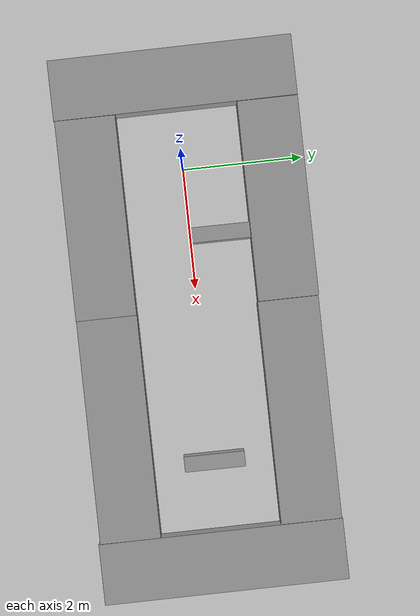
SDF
<sdf version="1.7">
 <world name="default">
  <light name="sun" type="directional">
   <pose>0 0 10 0 -0 0</pose>
   <diffuse>0.8 0.8 0.8 1</diffuse>
   <specular>0.2 0.2 0.2 1</specular>
   <attenuation>
    <range>1000</range>
    <constant>0.9</constant>
    <linear>0.01</linear>
    <quadratic>0.001</quadratic>
   </attenuation>
   <direction>-0.5 0.1 -0.9</direction>
   <spot><inner_angle>0</inner_angle><outer_angle>0</outer_angle><falloff>0</falloff></spot>
  </light>
  <model name="ground_plane">
   <static>1</static>
   <link name="link">
    <collision name="collision">
     <geometry><plane><normal>0 0 1</normal><size>100 100</size></plane></geometry>
     <surface><friction><ode><mu>100</mu><mu2>50</mu2></ode></friction></surface>
    </collision>
    <visual name="visual">
     <cast_shadows>0</cast_shadows>
     <geometry><plane><normal>0 0 1</normal><size>100 100</size></plane></geometry>
     <material>
      <script><uri>file://media/materials/scripts/gazebo.material</uri><name>Gazebo/Grey</name></script>
     </material>
    </visual>
   </link>
  </model>
  <gravity>0 0 -9.8</gravity>
  <magnetic_field>6e-06 2.3e-05 -4.2e-05</magnetic_field>
  <atmosphere type="adiabatic"/>
  <physics type="ode">
   <max_step_size>0.001</max_step_size>
   <real_time_factor>1</real_time_factor>
   <real_time_update_rate>1000</real_time_update_rate>
  </physics>
  <scene><ambient>0.4 0.4 0.4 1</ambient><background>0.7 0.7 0.7 1</background><shadows>1</shadows></scene>
  <spherical_coordinates>
   <surface_model>EARTH_WGS84</surface_model>
   <latitude_deg>0</latitude_deg>
   <longitude_deg>0</longitude_deg>
   <elevation>0</elevation>
   <heading_deg>0</heading_deg>
  </spherical_coordinates>
  <model name="unit_box">
   <pose>0.677237 1.50449 0.163986 -0 -0.0003 0.001446</pose>
   <link name="link">
    <inertial>
     <mass>1</mass>
     <inertia>
      <ixx>0.166667</ixx>
      <ixy>0</ixy>
      <ixz>0</ixz>
      <iyy>0.166667</iyy>
      <iyz>0</iyz>
      <izz>0.166667</izz>
     </inertia>
    </inertial>
    <collision name="collision"><geometry><box><size>3.30588 1 0.328964</size></box></geometry></collision>
    <visual name="visual">
     <geometry><box><size>3.30588 1 0.328964</size></box></geometry>
     <material>
      <script><name>Gazebo/Grey</name><uri>file://media/materials/scripts/gazebo.material</uri></script>
     </material>
    </visual>
   </link>
  </model>
  <model name="unit_box_clone">
   <pose>0.695253 -1.50916 0.164477 -1e-05 0 0.00332</pose>
   <link name="link">
    <inertial>
     <mass>1</mass>
     <inertia>
      <ixx>0.166667</ixx>
      <ixy>0</ixy>
      <ixz>0</ixz>
      <iyy>0.166667</iyy>
      <iyz>0</iyz>
      <izz>0.166667</izz>
     </inertia>
    </inertial>
    <collision name="collision"><geometry><box><size>3.30588 1 0.328964</size></box></geometry></collision>
    <visual name="visual">
     <geometry><box><size>3.30588 1 0.328964</size></box></geometry>
     <material>
      <script><name>Gazebo/Grey</name><uri>file://media/materials/scripts/gazebo.material</uri></script>
     </material>
    </visual>
   </link>
  </model>
  <model name="unit_box_clone_0">
   <pose>-1.47308 -0.015787 0.163313 0 0.00058 1.57793</pose>
   <link name="link">
    <inertial>
     <mass>1</mass>
     <inertia>
      <ixx>0.166667</ixx>
      <ixy>0</ixy>
      <ixz>0</ixz>
      <iyy>0.166667</iyy>
      <iyz>0</iyz>
      <izz>0.166667</izz>
     </inertia>
    </inertial>
    <collision name="collision"><geometry><box><size>4.03126 1 0.328964</size></box></geometry></collision>
    <visual name="visual">
     <geometry><box><size>4.03126 1 0.328964</size></box></geometry>
     <material>
      <script><name>Gazebo/Grey</name><uri>file://media/materials/scripts/gazebo.material</uri></script>
     </material>
    </visual>
   </link>
  </model>
  <model name="unit_box_clone_1">
   <pose>4.17297 1.49784 0.163694 -0 0.000429 0.001384</pose>
   <link name="link">
    <inertial>
     <mass>1</mass>
     <inertia>
      <ixx>0.166667</ixx>
      <ixy>0</ixy>
      <ixz>0</ixz>
      <iyy>0.166667</iyy>
      <iyz>0</iyz>
      <izz>0.166667</izz>
     </inertia>
    </inertial>
    <collision name="collision"><geometry><box><size>3.67799 1 0.328964</size></box></geometry></collision>
    <visual name="visual">
     <geometry><box><size>3.67799 1 0.328964</size></box></geometry>
     <material>
      <script><name>Gazebo/Grey</name><uri>file://media/materials/scripts/gazebo.material</uri></script>
     </material>
    </visual>
   </link>
  </model>
  <model name="unit_box_clone_1_clone">
   <pose>4.18795 -1.49505 0.163694 0 -0.000429 0.002704</pose>
   <link name="link">
    <inertial>
     <mass>1</mass>
     <inertia>
      <ixx>0.166667</ixx>
      <ixy>0</ixy>
      <ixz>0</ixz>
      <iyy>0.166667</iyy>
      <iyz>0</iyz>
      <izz>0.166667</izz>
     </inertia>
    </inertial>
    <collision name="collision"><geometry><box><size>3.67799 1 0.328964</size></box></geometry></collision>
    <visual name="visual">
     <geometry><box><size>3.67799 1 0.328964</size></box></geometry>
     <material>
      <script><name>Gazebo/Grey</name><uri>file://media/materials/scripts/gazebo.material</uri></script>
     </material>
    </visual>
   </link>
  </model>
  <model name="unit_box_clone_0_clone">
   <pose>6.52168 0.000891 0.163313 0 0.00058 1.5753</pose>
   <link name="link">
    <inertial>
     <mass>1</mass>
     <inertia>
      <ixx>0.166667</ixx>
      <ixy>0</ixy>
      <ixz>0</ixz>
      <iyy>0.166667</iyy>
      <iyz>0</iyz>
      <izz>0.166667</izz>
     </inertia>
    </inertial>
    <collision name="collision"><geometry><box><size>4.03127 1 0.328964</size></box></geometry></collision>
    <visual name="visual">
     <geometry><box><size>4.03127 1 0.328964</size></box></geometry>
     <material>
      <script><name>Gazebo/Grey</name><uri>file://media/materials/scripts/gazebo.material</uri></script>
     </material>
    </visual>
   </link>
  </model>
  <audio><device>default</device></audio>
  <model name="Obstacle_1">
   <link name="link">
    <inertial>
     <mass>1</mass>
     <inertia>
      <ixx>0.166667</ixx>
      <ixy>0</ixy>
      <ixz>0</ixz>
      <iyy>0.166667</iyy>
      <iyz>0</iyz>
      <izz>0.166667</izz>
     </inertia>
    </inertial>
    <visual name="visual">
     <geometry><box><size>0.2524 1 0.323029</size></box></geometry>
     <material>
      <script><name>Gazebo/Grey</name><uri>file://media/materials/scripts/gazebo.material</uri></script>
      <shader type="pixel"/>
     </material>
    </visual>
    <collision name="collision">
     <geometry><box><size>0.2524 1 0.323029</size></box></geometry>
     <surface>
      <friction>
       <ode><mu>1</mu><mu2>1</mu2><fdir1>0 0 0</fdir1><slip1>0</slip1><slip2>0</slip2></ode>
       <torsional>
        <coefficient>1</coefficient>
        <patch_radius>0</patch_radius>
        <surface_radius>0</surface_radius>
        <use_patch_radius>1</use_patch_radius>
        <ode><slip>0</slip></ode>
       </torsional>
      </friction>
      <bounce><restitution_coefficient>0</restitution_coefficient><threshold>1e+06</threshold></bounce>
      <contact>
       <collide_without_contact>0</collide_without_contact>
       <collide_without_contact_bitmask>1</collide_without_contact_bitmask>
       <collide_bitmask>1</collide_bitmask>
       <ode>
        <soft_cfm>0</soft_cfm>
        <soft_erp>0.2</soft_erp>
        <kp>1e+13</kp>
        <kd>1</kd>
        <max_vel>0.01</max_vel>
        <min_depth>0</min_depth>
       </ode>
       <bullet>
        <split_impulse>1</split_impulse>
        <split_impulse_penetration_threshold>-0.01</split_impulse_penetration_threshold>
        <soft_cfm>0</soft_cfm>
        <soft_erp>0.2</soft_erp>
        <kp>1e+13</kp>
        <kd>1</kd>
       </bullet>
      </contact>
     </surface>
    </collision>
   </link>
   <static>0</static>
   <pose>1.13956 0.499417 0.161514 0 0 -0.002364</pose>
  </model>
  <model name="Obstacle_2">
   <link name="link">
    <inertial>
     <mass>1</mass>
     <inertia>
      <ixx>0.166667</ixx>
      <ixy>0</ixy>
      <ixz>0</ixz>
      <iyy>0.166667</iyy>
      <iyz>0</iyz>
      <izz>0.166667</izz>
     </inertia>
    </inertial>
    <visual name="visual">
     <geometry><box><size>0.2524 1 0.323029</size></box></geometry>
     <material>
      <script><name>Gazebo/Grey</name><uri>file://media/materials/scripts/gazebo.material</uri></script>
      <shader type="pixel"/>
     </material>
    </visual>
    <collision name="collision">
     <geometry><box><size>0.2524 1 0.323029</size></box></geometry>
     <surface>
      <friction>
       <ode><mu>1</mu><mu2>1</mu2><fdir1>0 0 0</fdir1><slip1>0</slip1><slip2>0</slip2></ode>
       <torsional>
        <coefficient>1</coefficient>
        <patch_radius>0</patch_radius>
        <surface_radius>0</surface_radius>
        <use_patch_radius>1</use_patch_radius>
        <ode><slip>0</slip></ode>
       </torsional>
      </friction>
      <bounce><restitution_coefficient>0</restitution_coefficient><threshold>1e+06</threshold></bounce>
      <contact>
       <collide_without_contact>0</collide_without_contact>
       <collide_without_contact_bitmask>1</collide_without_contact_bitmask>
       <collide_bitmask>1</collide_bitmask>
       <ode>
        <soft_cfm>0</soft_cfm>
        <soft_erp>0.2</soft_erp>
        <kp>1e+13</kp>
        <kd>1</kd>
        <max_vel>0.01</max_vel>
        <min_depth>0</min_depth>
       </ode>
       <bullet>
        <split_impulse>1</split_impulse>
        <split_impulse_penetration_threshold>-0.01</split_impulse_penetration_threshold>
        <soft_cfm>0</soft_cfm>
        <soft_erp>0.2</soft_erp>
        <kp>1e+13</kp>
        <kd>1</kd>
       </bullet>
      </contact>
     </surface>
    </collision>
   </link>
   <static>0</static>
   <pose>4.87096 0.021106 0.161514 0 0 -0.001489</pose>
  </model>
 </world>
</sdf>
